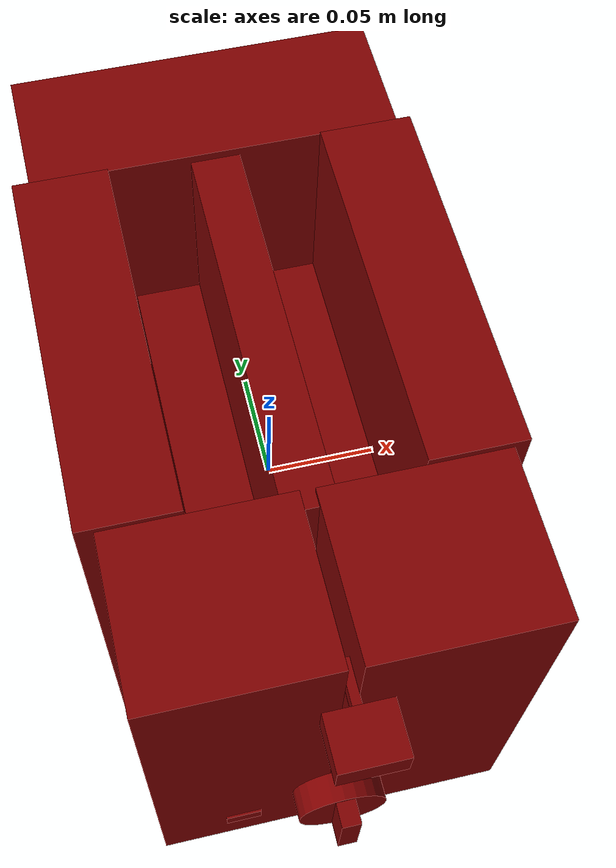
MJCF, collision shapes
<?xml version='1.0' encoding='UTF-8'?>
<mujoco model="model">
  <option timestep="0.002" gravity="0.0 0.0 -9.81"/>
  <compiler angle="radian"/>
  <asset>
    <mesh file="visuals/button_cancel.obj" name="button_cancel_vis"/>
    <mesh file="visuals/knob_doneness.obj" name="knob_doneness_vis"/>
    <mesh file="visuals/lever.obj" name="lever_vis"/>
    <mesh file="visuals/Body001.obj" name="Body001_vis"/>
    <texture file="visuals/T_BC001.png" name="Body001_material" type="2d"/>
    <material name="Body001_material" rgba="1 1 1 1.0" texture="Body001_material" shininess="0.4472135901451111" specular="0.5"/>
    <texture file="visuals/T_BC001.png" name="button_cancel_material" type="2d"/>
    <material name="button_cancel_material" rgba="1 1 1 1.0" texture="button_cancel_material" shininess="0.4472135901451111" specular="0.3103448502657381"/>
    <texture file="visuals/T_BC001.png" name="knob_doneness_material" type="2d"/>
    <material name="knob_doneness_material" rgba="1 1 1 1.0" texture="knob_doneness_material" shininess="0.4472135901451111" specular="0.3103448502657381"/>
    <texture file="visuals/T_BC001.png" name="lever_material" type="2d"/>
    <material name="lever_material" rgba="1 1 1 1.0" texture="lever_material" shininess="0.4472135901451111" specular="0.3103448502657381"/>
  </asset>
  <default>
    <default class="visual">
      <geom conaffinity="0" contype="0" group="1" type="mesh"/>
    </default>
    <default class="collision_1">
      <geom group="0" rgba="0.5 0 0 0.5" solref="0.004 1" solimp="0.998 0.998 0.001"/>
    </default>
    <default class="collision_2">
      <geom group="0" rgba="0.5 0 0 0.5" solref="0.004 1" solimp="0.998 0.998 0.001"/>
    </default>
    <default class="collision_3">
      <geom group="0" rgba="0.5 0 0 0.5" solref="0.004 1" solimp="0.998 0.998 0.001"/>
    </default>
    <default class="collision_4">
      <geom group="0" rgba="0.5 0 0 0.5" solref="0.004 1" solimp="0.998 0.998 0.001"/>
    </default>
    <default class="spawn">
      <geom group="0" rgba="1 1 1 0.5" contype="0" conaffinity="0"/>
      <site group="0" rgba="1 1 1 0.5"/>
    </default>
    <default class="region">
      <geom group="1" conaffinity="0" contype="0" rgba="0 1 0 0" mass="0"/>
    </default>
  </default>
  <worldbody>
    <body>
      <body name="object">
        <geom mesh="Body001_vis" type="mesh" solimp="0.998 0.998 0.001" solref="0.001 1" friction="0.95 0.3 0.1" class="visual" material="Body001_material"/>
        <geom type="box" pos="-0.06857675 0.02182055 -0.00028078" size="0.020948339253664017 0.08444619923830032 0.10489681363105774" quat="1.0 0.0 0.0 0.0" class="collision_1"/>
        <geom type="box" pos="-0.04256784 -0.09937535 -0.00141219" size="0.039433322846889496 0.03644528612494469 0.10376540571451187" quat="1.0 0.0 0.0 0.0" class="collision_1"/>
        <geom type="box" pos="0.04274224 -0.09937535 -0.00181542" size="0.03966588154435158 0.03644528612494469 0.10336218029260635" quat="1.0 0.0 0.0 0.0" class="collision_1"/>
        <geom type="box" pos="0.06817754 0.02182055 -0.00036813" size="0.020632304251194 0.08444619923830032 0.1048094630241394" quat="1.0 0.0 0.0 0.0" class="collision_1"/>
        <geom type="box" pos="0.00029991 0.13594921 -0.00056759" size="0.08244103193283081 0.02983938902616501 0.10407587885856628" quat="1.0 0.0 0.0 0.0" class="collision_1"/>
        <geom type="box" pos="-0.00004504 0.01810033 0.03276742" size="0.011021790094673634 0.08816640079021454 0.06665803492069244" quat="1.0 0.0 0.0 0.0" class="collision_1"/>
        <geom type="box" pos="0.00019488 0.01810033 -0.07992426" size="0.046650230884552 0.08816640079021454 0.024281252175569534" quat="1.0 0.0 0.0 0.0" class="collision_1"/>
        <body name="button_cancel">
          <joint axis="0.0 1.0 0.0" pos="-0.04355020 -0.13629356 -0.07349463" limited="true" name="button_cancel_joint" range="0.0 0.001" type="slide" damping="1" frictionloss="1" armature=".01" stiffness="4" springref="-1"/>
          <geom mesh="button_cancel_vis" type="mesh" solimp="0.998 0.998 0.001" solref="0.001 1" friction="0.95 0.3 0.1" class="visual" material="button_cancel_material"/>
          <geom class="collision_2" type="box" pos="-0.04338167 -0.13754641 -0.07339402" size="0.008162576705217361 0.0005323897348716855 0.004351872485131025" quat="1.0 0.0 0.0 0.0" name="button_cancel_main"/>
        </body>
        <body name="knob_doneness">
          <joint axis="0.0 1.0 0.0" pos="-0.00000214 -0.14896989 -0.05330840" limited="true" name="knob_doneness_joint" range="0.0 5.585053606381854" type="hinge" damping="0.05" frictionloss="0.75" armature="1"/>
          <geom mesh="knob_doneness_vis" type="mesh" solimp="0.998 0.998 0.001" solref="0.001 1" friction="0.95 0.3 0.1" class="visual" material="knob_doneness_material"/>
          <geom type="cylinder" pos="0.00000006 -0.14317946 -0.05336711" size="0.02036231756210327 0.006477284710854292" quat="0.7071068286895752 0.7071067690849304 0.0 0.0" class="collision_3" friction="100 0.5 0.01"/>
          <geom class="collision_3" type="box" pos="0.00014227 -0.15513085 -0.05319702" size="0.004485250450670719 0.005791296251118183 0.01846269890666008" quat="1.0 0.0 0.0 0.0" name="knob_doneness_main" friction="100 0.5 0.01"/>
        </body>
        <body name="lever">
          <joint axis="0.0 0.0 -1.0" pos="0.00000005 -0.15126050 0.07447940" limited="true" name="lever_joint" range="0.0 0.06" type="slide" damping="1" frictionloss="1" armature=".1" stiffness="3.6" springref="-0.5"/>
          <geom class="region" name="reg_slotL" type="box" pos="-0.028515165000000002 0.020435435 0.10265078999999999" size="0.017694725 0.076968475 0.07599996"/>
          <geom class="region" name="reg_slotR" type="box" pos="0.028945844999999998 0.020435435 0.10265078999999999" size="0.017922395 0.076968475 0.07599996"/>
          <geom mesh="lever_vis" type="mesh" solimp="0.998 0.998 0.001" solref="0.001 1" friction="0.95 0.3 0.1" class="visual" material="lever_material"/>
          <geom class="collision_4" type="box" pos="0.00005199 -0.15421921 0.07451826" size="0.014131924137473106 0.011563438922166824 0.007472217548638582" quat="1.0 0.0 0.0 0.0" name="lever_handle"/>
          <geom type="box" pos="-0.00001129 -0.13266546 0.07453355" size="0.001985369948670268 0.009772082790732384 0.003962809219956398" quat="1.0 0.0 0.0 0.0" class="collision_4"/>
          <geom class="collision_4" type="box" pos="-0.02829763 0.01947990 0.02300650" size="0.01536607276648283 0.07378319650888443 0.0035157527308911085" quat="1.0 0.0 0.0 0.0" name="slotL_floor"/>
          <geom class="collision_4" type="box" pos="0.02841973 0.01947990 0.02300650" size="0.015313372947275639 0.07378319650888443 0.003515755757689476" quat="1.0 0.0 0.0 0.0" name="slotR_floor"/>
        </body>
        <geom class="region" name="reg_main" type="box" pos="-5.000000004307115e-09 0.012333074999999999 1.4999999999043556e-08" size="0.08936461500000001 0.154573485 0.10464183499999999"/>
      </body>
    </body>
  </worldbody>
  <actuator>
    <motor name="button_cancel_joint_actuator" joint="button_cancel_joint" gear="0.5"/>
    <motor name="knob_doneness_joint_actuator" joint="knob_doneness_joint" gear="10"/>
    <motor name="lever_joint_actuator" joint="lever_joint" gear="2"/>
  </actuator>
</mujoco>
